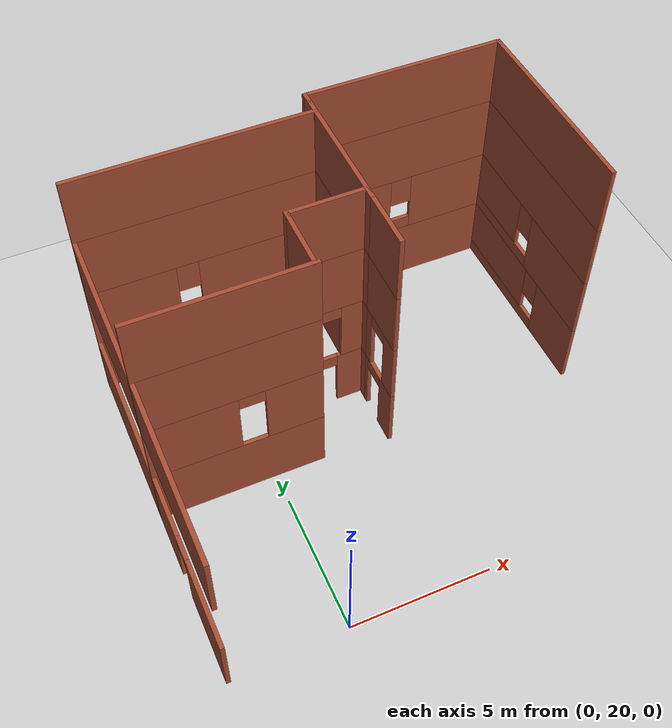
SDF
<sdf version="1.7">
 <world name="default">
  <model name="ground_plane">
   <static>1</static>
   <link name="link">
    <collision name="collision">
     <geometry><plane><normal>0 0 1</normal><size>300 300</size></plane></geometry>
     <surface>
      <contact><collide_bitmask>65535</collide_bitmask></contact>
      <friction><ode><mu>100</mu><mu2>50</mu2></ode></friction>
     </surface>
    </collision>
    <visual name="visual">
     <cast_shadows>0</cast_shadows>
     <geometry><plane><normal>0 0 1</normal><size>300 300</size></plane></geometry>
     <material>
      <script><uri>file://media/materials/scripts/gazebo.material</uri><name>Gazebo/Grey</name></script>
     </material>
    </visual>
   </link>
  </model>
  <model name="Drone_House_1">
   <pose>3.61083 24.7733 0 0 -0 0</pose>
   <link name="Wall_10">
    <collision name="Wall_10_Collision">
     <geometry><box><size>1 0.15 2.5</size></box></geometry>
     <pose>0 0 1.25 0 -0 0</pose>
    </collision>
    <visual name="Wall_10_Visual">
     <pose>0 0 1.25 0 -0 0</pose>
     <geometry><box><size>1 0.15 2.5</size></box></geometry>
     <material>
      <script><uri>file://media/materials/scripts/gazebo.material</uri><name>Gazebo/Bricks</name></script>
      <ambient>1 1 1 1</ambient>
     </material>
     <meta><layer>0</layer></meta>
    </visual>
    <pose>0.626064 7.925 0 0 -0 1.5708</pose>
   </link>
   <link name="Wall_108">
    <collision name="Wall_108_Collision">
     <geometry><box><size>6 0.15 2.5</size></box></geometry>
     <pose>0 0 1.25 0 -0 0</pose>
    </collision>
    <visual name="Wall_108_Visual">
     <pose>0 0 1.25 0 -0 0</pose>
     <geometry><box><size>6 0.15 2.5</size></box></geometry>
     <material>
      <script><uri>file://media/materials/scripts/gazebo.material</uri><name>Gazebo/Bricks</name></script>
      <ambient>1 1 1 1</ambient>
     </material>
     <meta><layer>3</layer></meta>
    </visual>
    <pose>-4.80107 1.443 7.5 0 -0 0</pose>
   </link>
   <link name="Wall_109">
    <collision name="Wall_109_Collision">
     <geometry><box><size>8.5 0.15 2.5</size></box></geometry>
     <pose>0 0 1.25 0 -0 0</pose>
    </collision>
    <visual name="Wall_109_Visual">
     <pose>0 0 1.25 0 -0 0</pose>
     <geometry><box><size>8.5 0.15 2.5</size></box></geometry>
     <material>
      <script><uri>file://media/materials/scripts/gazebo.material</uri><name>Gazebo/Bricks</name></script>
      <ambient>1 1 1 1</ambient>
     </material>
     <meta><layer>3</layer></meta>
    </visual>
    <pose>-3.54894 7.5 7.5 0 -0 0</pose>
   </link>
   <link name="Wall_11">
    <collision name="Wall_11_Collision">
     <geometry><box><size>5.25 0.15 2.5</size></box></geometry>
     <pose>0 0 1.25 0 -0 0</pose>
    </collision>
    <visual name="Wall_11_Visual">
     <pose>0 0 1.25 0 -0 0</pose>
     <geometry><box><size>5.25 0.15 2.5</size></box></geometry>
     <material>
      <script><uri>file://media/materials/scripts/gazebo.material</uri><name>Gazebo/Bricks</name></script>
      <ambient>1 1 1 1</ambient>
     </material>
     <meta><layer>0</layer></meta>
    </visual>
    <pose>0.626064 5.8 0 0 -0 -1.5708</pose>
   </link>
   <link name="Wall_110">
    <collision name="Wall_110_Collision">
     <geometry><box><size>1 0.15 2.5</size></box></geometry>
     <pose>0 0 1.25 0 -0 0</pose>
    </collision>
    <visual name="Wall_110_Visual">
     <pose>0 0 1.25 0 -0 0</pose>
     <geometry><box><size>1 0.15 2.5</size></box></geometry>
     <material>
      <script><uri>file://media/materials/scripts/gazebo.material</uri><name>Gazebo/Bricks</name></script>
      <ambient>1 1 1 1</ambient>
     </material>
     <meta><layer>3</layer></meta>
    </visual>
    <pose>0.626064 7.925 7.5 0 -0 1.5708</pose>
   </link>
   <link name="Wall_111">
    <collision name="Wall_111_Collision">
     <geometry><box><size>5.25 0.15 2.5</size></box></geometry>
     <pose>0 0 1.25 0 -0 0</pose>
    </collision>
    <visual name="Wall_111_Visual">
     <pose>0 0 1.25 0 -0 0</pose>
     <geometry><box><size>5.25 0.15 2.5</size></box></geometry>
     <material>
      <script><uri>file://media/materials/scripts/gazebo.material</uri><name>Gazebo/Bricks</name></script>
      <ambient>1 1 1 1</ambient>
     </material>
     <meta><layer>3</layer></meta>
    </visual>
    <pose>0.626064 5.8 7.5 0 -0 -1.5708</pose>
   </link>
   <link name="Wall_112">
    <collision name="Wall_112_Collision">
     <geometry><box><size>0.5 0.15 2.5</size></box></geometry>
     <pose>0 0 1.25 0 -0 0</pose>
    </collision>
    <visual name="Wall_112_Visual">
     <pose>0 0 1.25 0 -0 0</pose>
     <geometry><box><size>0.5 0.15 2.5</size></box></geometry>
     <material>
      <script><uri>file://media/materials/scripts/gazebo.material</uri><name>Gazebo/Bricks</name></script>
      <ambient>1 1 1 1</ambient>
     </material>
     <meta><layer>3</layer></meta>
    </visual>
    <pose>0.626064 3.425 7.5 0 -0 1.5708</pose>
   </link>
   <link name="Wall_113">
    <collision name="Wall_113_Collision">
     <geometry><box><size>2.75 0.15 2.5</size></box></geometry>
     <pose>0 0 1.25 0 -0 0</pose>
    </collision>
    <visual name="Wall_113_Visual">
     <pose>0 0 1.25 0 -0 0</pose>
     <geometry><box><size>2.75 0.15 2.5</size></box></geometry>
     <material>
      <script><uri>file://media/materials/scripts/gazebo.material</uri><name>Gazebo/Bricks</name></script>
      <ambient>1 1 1 1</ambient>
     </material>
     <meta><layer>3</layer></meta>
    </visual>
    <pose>-0.673936 3.6 7.5 0 -0 3.14159</pose>
   </link>
   <link name="Wall_114">
    <collision name="Wall_114_Collision">
     <geometry><box><size>0.25 0.15 2.5</size></box></geometry>
     <pose>0 0 1.25 0 -0 0</pose>
    </collision>
    <visual name="Wall_114_Visual">
     <pose>0 0 1.25 0 -0 0</pose>
     <geometry><box><size>0.25 0.15 2.5</size></box></geometry>
     <material>
      <script><uri>file://media/materials/scripts/gazebo.material</uri><name>Gazebo/Bricks</name></script>
      <ambient>1 1 1 1</ambient>
     </material>
     <meta><layer>3</layer></meta>
    </visual>
    <pose>-1.97394 3.55 7.5 0 -0 -1.5708</pose>
   </link>
   <link name="Wall_115">
    <collision name="Wall_115_Collision">
     <geometry><box><size>2.25 0.15 2.5</size></box></geometry>
     <pose>0 0 1.25 0 -0 0</pose>
    </collision>
    <visual name="Wall_115_Visual">
     <pose>0 0 1.25 0 -0 0</pose>
     <geometry><box><size>2.25 0.15 2.5</size></box></geometry>
     <material>
      <script><uri>file://media/materials/scripts/gazebo.material</uri><name>Gazebo/Bricks</name></script>
      <ambient>1 1 1 1</ambient>
     </material>
     <meta><layer>3</layer></meta>
    </visual>
    <pose>-1.97394 2.55 7.5 0 -0 -1.5708</pose>
   </link>
   <link name="Wall_116">
    <collision name="Wall_116_Collision">
     <geometry><box><size>2.5 0.15 2.5</size></box></geometry>
     <pose>0 0 1.25 0 -0 0</pose>
    </collision>
    <visual name="Wall_116_Visual">
     <pose>0 0 1.25 0 -0 0</pose>
     <geometry><box><size>2.5 0.15 2.5</size></box></geometry>
     <material>
      <script><uri>file://media/materials/scripts/gazebo.material</uri><name>Gazebo/Bricks</name></script>
      <ambient>1 1 1 1</ambient>
     </material>
     <meta><layer>3</layer></meta>
    </visual>
    <pose>0.626064 2.425 7.5 0 -0 -1.5708</pose>
   </link>
   <link name="Wall_118">
    <collision name="Wall_118_Collision">
     <geometry><box><size>7.25 0.15 2.5</size></box></geometry>
     <pose>0 0 1.25 0 -0 0</pose>
    </collision>
    <visual name="Wall_118_Visual">
     <pose>0 0 1.25 0 -0 0</pose>
     <geometry><box><size>7.25 0.15 2.5</size></box></geometry>
     <material>
      <script><uri>file://media/materials/scripts/gazebo.material</uri><name>Gazebo/Bricks</name></script>
      <ambient>1 1 1 1</ambient>
     </material>
     <meta><layer>3</layer></meta>
    </visual>
    <pose>7.72606 4.8 7.5 0 -0 1.5708</pose>
   </link>
   <link name="Wall_119">
    <collision name="Wall_119_Collision">
     <geometry><box><size>7.25 0.15 2.5</size></box></geometry>
     <pose>0 0 1.25 0 -0 0</pose>
    </collision>
    <visual name="Wall_119_Visual">
     <pose>0 0 1.25 0 -0 0</pose>
     <geometry><box><size>7.25 0.15 2.5</size></box></geometry>
     <material>
      <script><uri>file://media/materials/scripts/gazebo.material</uri><name>Gazebo/Bricks</name></script>
      <ambient>1 1 1 1</ambient>
     </material>
     <meta><layer>3</layer></meta>
    </visual>
    <pose>4.17606 8.35 7.5 0 -0 3.14159</pose>
   </link>
   <link name="Wall_12">
    <collision name="Wall_12_Collision">
     <geometry><box><size>0.5 0.15 2.5</size></box></geometry>
     <pose>0 0 1.25 0 -0 0</pose>
    </collision>
    <visual name="Wall_12_Visual">
     <pose>0 0 1.25 0 -0 0</pose>
     <geometry><box><size>0.5 0.15 2.5</size></box></geometry>
     <material>
      <script><uri>file://media/materials/scripts/gazebo.material</uri><name>Gazebo/Bricks</name></script>
      <ambient>1 1 1 1</ambient>
     </material>
     <meta><layer>0</layer></meta>
    </visual>
    <pose>0.626064 3.425 0 0 -0 1.5708</pose>
   </link>
   <link name="Wall_13">
    <pose>-0.673936 3.6 0 0 -0 3.14159</pose>
    <visual name="Wall_13_Visual_0">
     <pose>-0.843864 0 1.25 0 -0 0</pose>
     <geometry><box><size>1.06227 0.15 2.5</size></box></geometry>
     <material>
      <script><uri>file://media/materials/scripts/gazebo.material</uri><name>Gazebo/Bricks</name></script>
      <ambient>1 1 1 1</ambient>
     </material>
     <meta><layer>0</layer></meta>
    </visual>
    <collision name="Wall_13_Collision_0">
     <geometry><box><size>1.06227 0.15 2.5</size></box></geometry>
     <pose>-0.843864 0 1.25 0 -0 0</pose>
    </collision>
    <visual name="Wall_13_Visual_1">
     <pose>0.981136 0 1.25 0 -0 0</pose>
     <geometry><box><size>0.787728 0.15 2.5</size></box></geometry>
     <material>
      <script><uri>file://media/materials/scripts/gazebo.material</uri><name>Gazebo/Bricks</name></script>
      <ambient>1 1 1 1</ambient>
     </material>
     <meta><layer>0</layer></meta>
    </visual>
    <collision name="Wall_13_Collision_1">
     <geometry><box><size>0.787728 0.15 2.5</size></box></geometry>
     <pose>0.981136 0 1.25 0 -0 0</pose>
    </collision>
    <visual name="Wall_13_Visual_2">
     <pose>0.137272 0 2.25 0 -0 0</pose>
     <geometry><box><size>0.9 0.15 0.5</size></box></geometry>
     <material>
      <script><uri>file://media/materials/scripts/gazebo.material</uri><name>Gazebo/Bricks</name></script>
      <ambient>1 1 1 1</ambient>
     </material>
     <meta><layer>0</layer></meta>
    </visual>
    <collision name="Wall_13_Collision_2">
     <geometry><box><size>0.9 0.15 0.5</size></box></geometry>
     <pose>0.137272 0 2.25 0 -0 0</pose>
    </collision>
   </link>
   <link name="Wall_14">
    <collision name="Wall_14_Collision">
     <geometry><box><size>0.25 0.15 2.5</size></box></geometry>
     <pose>0 0 1.25 0 -0 0</pose>
    </collision>
    <visual name="Wall_14_Visual">
     <pose>0 0 1.25 0 -0 0</pose>
     <geometry><box><size>0.25 0.15 2.5</size></box></geometry>
     <material>
      <script><uri>file://media/materials/scripts/gazebo.material</uri><name>Gazebo/Bricks</name></script>
      <ambient>1 1 1 1</ambient>
     </material>
     <meta><layer>0</layer></meta>
    </visual>
    <pose>-1.97394 3.55 0 0 -0 -1.5708</pose>
   </link>
   <link name="Wall_16">
    <pose>-1.97394 2.55 0 0 -0 -1.5708</pose>
    <visual name="Wall_16_Visual_0">
     <pose>-0.800315 0 1.25 0 -0 0</pose>
     <geometry><box><size>0.649369 0.15 2.5</size></box></geometry>
     <material>
      <script><uri>file://media/materials/scripts/gazebo.material</uri><name>Gazebo/Bricks</name></script>
      <ambient>1 1 1 1</ambient>
     </material>
     <meta><layer>0</layer></meta>
    </visual>
    <collision name="Wall_16_Collision_0">
     <geometry><box><size>0.649369 0.15 2.5</size></box></geometry>
     <pose>-0.800315 0 1.25 0 -0 0</pose>
    </collision>
    <visual name="Wall_16_Visual_1">
     <pose>0.774685 0 1.25 0 -0 0</pose>
     <geometry><box><size>0.700631 0.15 2.5</size></box></geometry>
     <material>
      <script><uri>file://media/materials/scripts/gazebo.material</uri><name>Gazebo/Bricks</name></script>
      <ambient>1 1 1 1</ambient>
     </material>
     <meta><layer>0</layer></meta>
    </visual>
    <collision name="Wall_16_Collision_1">
     <geometry><box><size>0.700631 0.15 2.5</size></box></geometry>
     <pose>0.774685 0 1.25 0 -0 0</pose>
    </collision>
    <visual name="Wall_16_Visual_2">
     <pose>-0.025631 0 2.25 0 -0 0</pose>
     <geometry><box><size>0.9 0.15 0.5</size></box></geometry>
     <material>
      <script><uri>file://media/materials/scripts/gazebo.material</uri><name>Gazebo/Bricks</name></script>
      <ambient>1 1 1 1</ambient>
     </material>
     <meta><layer>0</layer></meta>
    </visual>
    <collision name="Wall_16_Collision_2">
     <geometry><box><size>0.9 0.15 0.5</size></box></geometry>
     <pose>-0.025631 0 2.25 0 -0 0</pose>
    </collision>
   </link>
   <link name="Wall_18">
    <pose>0.626064 2.425 0 0 -0 -1.5708</pose>
    <visual name="Wall_18_Visual_0">
     <pose>-0.898715 0 1.25 0 -0 0</pose>
     <geometry><box><size>0.70257 0.15 2.5</size></box></geometry>
     <material>
      <script><uri>file://media/materials/scripts/gazebo.material</uri><name>Gazebo/Bricks</name></script>
      <ambient>1 1 1 1</ambient>
     </material>
     <meta><layer>0</layer></meta>
    </visual>
    <collision name="Wall_18_Collision_0">
     <geometry><box><size>0.70257 0.15 2.5</size></box></geometry>
     <pose>-0.898715 0 1.25 0 -0 0</pose>
    </collision>
    <visual name="Wall_18_Visual_1">
     <pose>0.801285 0 1.25 0 -0 0</pose>
     <geometry><box><size>0.89743 0.15 2.5</size></box></geometry>
     <material>
      <script><uri>file://media/materials/scripts/gazebo.material</uri><name>Gazebo/Bricks</name></script>
      <ambient>1 1 1 1</ambient>
     </material>
     <meta><layer>0</layer></meta>
    </visual>
    <collision name="Wall_18_Collision_1">
     <geometry><box><size>0.89743 0.15 2.5</size></box></geometry>
     <pose>0.801285 0 1.25 0 -0 0</pose>
    </collision>
    <visual name="Wall_18_Visual_2">
     <pose>-0.09743 0 2.25 0 -0 0</pose>
     <geometry><box><size>0.9 0.15 0.5</size></box></geometry>
     <material>
      <script><uri>file://media/materials/scripts/gazebo.material</uri><name>Gazebo/Bricks</name></script>
      <ambient>1 1 1 1</ambient>
     </material>
     <meta><layer>0</layer></meta>
    </visual>
    <collision name="Wall_18_Collision_2">
     <geometry><box><size>0.9 0.15 0.5</size></box></geometry>
     <pose>-0.09743 0 2.25 0 -0 0</pose>
    </collision>
   </link>
   <link name="Wall_20">
    <pose>7.72606 4.8 0 0 -0 1.5708</pose>
    <visual name="Wall_20_Visual_0">
     <pose>-2.40648 0 1.25 0 -0 0</pose>
     <geometry><box><size>2.43704 0.15 2.5</size></box></geometry>
     <material>
      <script><uri>file://media/materials/scripts/gazebo.material</uri><name>Gazebo/Bricks</name></script>
      <ambient>1 1 1 1</ambient>
     </material>
     <meta><layer>0</layer></meta>
    </visual>
    <collision name="Wall_20_Collision_0">
     <geometry><box><size>2.43704 0.15 2.5</size></box></geometry>
     <pose>-2.40648 0 1.25 0 -0 0</pose>
    </collision>
    <visual name="Wall_20_Visual_1">
     <pose>1.21852 0 0.25 0 -0 0</pose>
     <geometry><box><size>4.81296 0.15 0.5</size></box></geometry>
     <material>
      <script><uri>file://media/materials/scripts/gazebo.material</uri><name>Gazebo/Bricks</name></script>
      <ambient>1 1 1 1</ambient>
     </material>
     <meta><layer>0</layer></meta>
    </visual>
    <collision name="Wall_20_Collision_1">
     <geometry><box><size>4.81296 0.15 0.5</size></box></geometry>
     <pose>1.21852 0 0.25 0 -0 0</pose>
    </collision>
    <visual name="Wall_20_Visual_2">
     <pose>1.61852 0 1.5 0 -0 0</pose>
     <geometry><box><size>4.01296 0.15 2</size></box></geometry>
     <material>
      <script><uri>file://media/materials/scripts/gazebo.material</uri><name>Gazebo/Bricks</name></script>
      <ambient>1 1 1 1</ambient>
     </material>
     <meta><layer>0</layer></meta>
    </visual>
    <collision name="Wall_20_Collision_2">
     <geometry><box><size>4.01296 0.15 2</size></box></geometry>
     <pose>1.61852 0 1.5 0 -0 0</pose>
    </collision>
    <visual name="Wall_20_Visual_3">
     <pose>-0.787959 0 1.9 0 -0 0</pose>
     <geometry><box><size>0.8 0.15 1.2</size></box></geometry>
     <material>
      <script><uri>file://media/materials/scripts/gazebo.material</uri><name>Gazebo/Bricks</name></script>
      <ambient>1 1 1 1</ambient>
     </material>
     <meta><layer>0</layer></meta>
    </visual>
    <collision name="Wall_20_Collision_3">
     <geometry><box><size>0.8 0.15 1.2</size></box></geometry>
     <pose>-0.787959 0 1.9 0 -0 0</pose>
    </collision>
   </link>
   <link name="Wall_21">
    <collision name="Wall_21_Collision">
     <geometry><box><size>7.25 0.15 2.5</size></box></geometry>
     <pose>0 0 1.25 0 -0 0</pose>
    </collision>
    <visual name="Wall_21_Visual">
     <pose>0 0 1.25 0 -0 0</pose>
     <geometry><box><size>7.25 0.15 2.5</size></box></geometry>
     <material>
      <script><uri>file://media/materials/scripts/gazebo.material</uri><name>Gazebo/Bricks</name></script>
      <ambient>1 1 1 1</ambient>
     </material>
     <meta><layer>0</layer></meta>
    </visual>
    <pose>4.17606 8.35 0 0 -0 3.14159</pose>
   </link>
   <link name="Wall_37">
    <pose>-4.80107 1.443 2.5 0 -0 0</pose>
    <visual name="Wall_37_Visual_0">
     <pose>-1.43248 0 1.25 0 -0 0</pose>
     <geometry><box><size>3.13503 0.15 2.5</size></box></geometry>
     <material>
      <script><uri>file://media/materials/scripts/gazebo.material</uri><name>Gazebo/Bricks</name></script>
      <ambient>1 1 1 1</ambient>
     </material>
     <meta><layer>1</layer></meta>
    </visual>
    <collision name="Wall_37_Collision_0">
     <geometry><box><size>3.13503 0.15 2.5</size></box></geometry>
     <pose>-1.43248 0 1.25 0 -0 0</pose>
    </collision>
    <visual name="Wall_37_Visual_1">
     <pose>2.01752 0 1.25 0 -0 0</pose>
     <geometry><box><size>1.96497 0.15 2.5</size></box></geometry>
     <material>
      <script><uri>file://media/materials/scripts/gazebo.material</uri><name>Gazebo/Bricks</name></script>
      <ambient>1 1 1 1</ambient>
     </material>
     <meta><layer>1</layer></meta>
    </visual>
    <collision name="Wall_37_Collision_1">
     <geometry><box><size>1.96497 0.15 2.5</size></box></geometry>
     <pose>2.01752 0 1.25 0 -0 0</pose>
    </collision>
    <visual name="Wall_37_Visual_2">
     <pose>0.585032 0 2.25 0 -0 0</pose>
     <geometry><box><size>0.9 0.15 0.5</size></box></geometry>
     <material>
      <script><uri>file://media/materials/scripts/gazebo.material</uri><name>Gazebo/Bricks</name></script>
      <ambient>1 1 1 1</ambient>
     </material>
     <meta><layer>1</layer></meta>
    </visual>
    <collision name="Wall_37_Collision_2">
     <geometry><box><size>0.9 0.15 0.5</size></box></geometry>
     <pose>0.585032 0 2.25 0 -0 0</pose>
    </collision>
   </link>
   <link name="Wall_38">
    <pose>-3.54894 7.5 2.5 0 -0 0</pose>
    <visual name="Wall_38_Visual_0">
     <pose>-2.67185 0 1.25 0 -0 0</pose>
     <geometry><box><size>3.1563 0.15 2.5</size></box></geometry>
     <material>
      <script><uri>file://media/materials/scripts/gazebo.material</uri><name>Gazebo/Bricks</name></script>
      <ambient>1 1 1 1</ambient>
     </material>
     <meta><layer>1</layer></meta>
    </visual>
    <collision name="Wall_38_Collision_0">
     <geometry><box><size>3.1563 0.15 2.5</size></box></geometry>
     <pose>-2.67185 0 1.25 0 -0 0</pose>
    </collision>
    <visual name="Wall_38_Visual_1">
     <pose>1.57815 0 0.25 0 -0 0</pose>
     <geometry><box><size>5.3437 0.15 0.5</size></box></geometry>
     <material>
      <script><uri>file://media/materials/scripts/gazebo.material</uri><name>Gazebo/Bricks</name></script>
      <ambient>1 1 1 1</ambient>
     </material>
     <meta><layer>1</layer></meta>
    </visual>
    <collision name="Wall_38_Collision_1">
     <geometry><box><size>5.3437 0.15 0.5</size></box></geometry>
     <pose>1.57815 0 0.25 0 -0 0</pose>
    </collision>
    <visual name="Wall_38_Visual_2">
     <pose>1.97815 0 1.5 0 -0 0</pose>
     <geometry><box><size>4.5437 0.15 2</size></box></geometry>
     <material>
      <script><uri>file://media/materials/scripts/gazebo.material</uri><name>Gazebo/Bricks</name></script>
      <ambient>1 1 1 1</ambient>
     </material>
     <meta><layer>1</layer></meta>
    </visual>
    <collision name="Wall_38_Collision_2">
     <geometry><box><size>4.5437 0.15 2</size></box></geometry>
     <pose>1.97815 0 1.5 0 -0 0</pose>
    </collision>
    <visual name="Wall_38_Visual_3">
     <pose>-0.693697 0 1.9 0 -0 0</pose>
     <geometry><box><size>0.8 0.15 1.2</size></box></geometry>
     <material>
      <script><uri>file://media/materials/scripts/gazebo.material</uri><name>Gazebo/Bricks</name></script>
      <ambient>1 1 1 1</ambient>
     </material>
     <meta><layer>1</layer></meta>
    </visual>
    <collision name="Wall_38_Collision_3">
     <geometry><box><size>0.8 0.15 1.2</size></box></geometry>
     <pose>-0.693697 0 1.9 0 -0 0</pose>
    </collision>
   </link>
   <link name="Wall_39">
    <collision name="Wall_39_Collision">
     <geometry><box><size>1 0.15 2.5</size></box></geometry>
     <pose>0 0 1.25 0 -0 0</pose>
    </collision>
    <visual name="Wall_39_Visual">
     <pose>0 0 1.25 0 -0 0</pose>
     <geometry><box><size>1 0.15 2.5</size></box></geometry>
     <material>
      <script><uri>file://media/materials/scripts/gazebo.material</uri><name>Gazebo/Bricks</name></script>
      <ambient>1 1 1 1</ambient>
     </material>
     <meta><layer>1</layer></meta>
    </visual>
    <pose>0.626064 7.925 2.5 0 -0 1.5708</pose>
   </link>
   <link name="Wall_4">
    <pose>-7.72394 1.325 0 0 -0 -1.5708</pose>
    <visual name="Wall_4_Visual_0">
     <pose>-2.0069 0 1.25 0 -0 0</pose>
     <geometry><box><size>8.4862 0.15 2.5</size></box></geometry>
     <material>
      <script><uri>file://media/materials/scripts/gazebo.material</uri><name>Gazebo/Bricks</name></script>
      <ambient>1 1 1 1</ambient>
     </material>
     <meta><layer>0</layer></meta>
    </visual>
    <collision name="Wall_4_Collision_0">
     <geometry><box><size>8.4862 0.15 2.5</size></box></geometry>
     <pose>-2.0069 0 1.25 0 -0 0</pose>
    </collision>
    <visual name="Wall_4_Visual_1">
     <pose>4.6931 0 1.25 0 -0 0</pose>
     <geometry><box><size>3.1138 0.15 2.5</size></box></geometry>
     <material>
      <script><uri>file://media/materials/scripts/gazebo.material</uri><name>Gazebo/Bricks</name></script>
      <ambient>1 1 1 1</ambient>
     </material>
     <meta><layer>0</layer></meta>
    </visual>
    <collision name="Wall_4_Collision_1">
     <geometry><box><size>3.1138 0.15 2.5</size></box></geometry>
     <pose>4.6931 0 1.25 0 -0 0</pose>
    </collision>
    <visual name="Wall_4_Visual_2">
     <pose>2.6862 0 2.25 0 -0 0</pose>
     <geometry><box><size>0.9 0.15 0.5</size></box></geometry>
     <material>
      <script><uri>file://media/materials/scripts/gazebo.material</uri><name>Gazebo/Bricks</name></script>
      <ambient>1 1 1 1</ambient>
     </material>
     <meta><layer>0</layer></meta>
    </visual>
    <collision name="Wall_4_Collision_2">
     <geometry><box><size>0.9 0.15 0.5</size></box></geometry>
     <pose>2.6862 0 2.25 0 -0 0</pose>
    </collision>
   </link>
   <link name="Wall_40">
    <collision name="Wall_40_Collision">
     <geometry><box><size>5.25 0.15 2.5</size></box></geometry>
     <pose>0 0 1.25 0 -0 0</pose>
    </collision>
    <visual name="Wall_40_Visual">
     <pose>0 0 1.25 0 -0 0</pose>
     <geometry><box><size>5.25 0.15 2.5</size></box></geometry>
     <material>
      <script><uri>file://media/materials/scripts/gazebo.material</uri><name>Gazebo/Bricks</name></script>
      <ambient>1 1 1 1</ambient>
     </material>
     <meta><layer>1</layer></meta>
    </visual>
    <pose>0.626064 5.8 2.5 0 -0 -1.5708</pose>
   </link>
   <link name="Wall_41">
    <collision name="Wall_41_Collision">
     <geometry><box><size>0.5 0.15 2.5</size></box></geometry>
     <pose>0 0 1.25 0 -0 0</pose>
    </collision>
    <visual name="Wall_41_Visual">
     <pose>0 0 1.25 0 -0 0</pose>
     <geometry><box><size>0.5 0.15 2.5</size></box></geometry>
     <material>
      <script><uri>file://media/materials/scripts/gazebo.material</uri><name>Gazebo/Bricks</name></script>
      <ambient>1 1 1 1</ambient>
     </material>
     <meta><layer>1</layer></meta>
    </visual>
    <pose>0.626064 3.425 2.5 0 -0 1.5708</pose>
   </link>
   <link name="Wall_42">
    <pose>-0.673936 3.6 2.5 0 -0 3.14159</pose>
    <visual name="Wall_42_Visual_0">
     <pose>-0.910365 0 1.25 0 -0 0</pose>
     <geometry><box><size>0.929271 0.15 2.5</size></box></geometry>
     <material>
      <script><uri>file://media/materials/scripts/gazebo.material</uri><name>Gazebo/Bricks</name></script>
      <ambient>1 1 1 1</ambient>
     </material>
     <meta><layer>1</layer></meta>
    </visual>
    <collision name="Wall_42_Collision_0">
     <geometry><box><size>0.929271 0.15 2.5</size></box></geometry>
     <pose>-0.910365 0 1.25 0 -0 0</pose>
    </collision>
    <visual name="Wall_42_Visual_1">
     <pose>0.914635 0 1.25 0 -0 0</pose>
     <geometry><box><size>0.920729 0.15 2.5</size></box></geometry>
     <material>
      <script><uri>file://media/materials/scripts/gazebo.material</uri><name>Gazebo/Bricks</name></script>
      <ambient>1 1 1 1</ambient>
     </material>
     <meta><layer>1</layer></meta>
    </visual>
    <collision name="Wall_42_Collision_1">
     <geometry><box><size>0.920729 0.15 2.5</size></box></geometry>
     <pose>0.914635 0 1.25 0 -0 0</pose>
    </collision>
    <visual name="Wall_42_Visual_2">
     <pose>0.004271 0 2.25 0 -0 0</pose>
     <geometry><box><size>0.9 0.15 0.5</size></box></geometry>
     <material>
      <script><uri>file://media/materials/scripts/gazebo.material</uri><name>Gazebo/Bricks</name></script>
      <ambient>1 1 1 1</ambient>
     </material>
     <meta><layer>1</layer></meta>
    </visual>
    <collision name="Wall_42_Collision_2">
     <geometry><box><size>0.9 0.15 0.5</size></box></geometry>
     <pose>0.004271 0 2.25 0 -0 0</pose>
    </collision>
   </link>
   <link name="Wall_43">
    <collision name="Wall_43_Collision">
     <geometry><box><size>0.25 0.15 2.5</size></box></geometry>
     <pose>0 0 1.25 0 -0 0</pose>
    </collision>
    <visual name="Wall_43_Visual">
     <pose>0 0 1.25 0 -0 0</pose>
     <geometry><box><size>0.25 0.15 2.5</size></box></geometry>
     <material>
      <script><uri>file://media/materials/scripts/gazebo.material</uri><name>Gazebo/Bricks</name></script>
      <ambient>1 1 1 1</ambient>
     </material>
     <meta><layer>1</layer></meta>
    </visual>
    <pose>-1.97394 3.55 2.5 0 -0 -1.5708</pose>
   </link>
   <link name="Wall_44">
    <pose>-1.97394 2.55 2.5 0 -0 -1.5708</pose>
    <visual name="Wall_44_Visual_0">
     <pose>-0.773715 0 1.25 0 -0 0</pose>
     <geometry><box><size>0.70257 0.15 2.5</size></box></geometry>
     <material>
      <script><uri>file://media/materials/scripts/gazebo.material</uri><name>Gazebo/Bricks</name></script>
      <ambient>1 1 1 1</ambient>
     </material>
     <meta><layer>1</layer></meta>
    </visual>
    <collision name="Wall_44_Collision_0">
     <geometry><box><size>0.70257 0.15 2.5</size></box></geometry>
     <pose>-0.773715 0 1.25 0 -0 0</pose>
    </collision>
    <visual name="Wall_44_Visual_1">
     <pose>0.801285 0 1.25 0 -0 0</pose>
     <geometry><box><size>0.64743 0.15 2.5</size></box></geometry>
     <material>
      <script><uri>file://media/materials/scripts/gazebo.material</uri><name>Gazebo/Bricks</name></script>
      <ambient>1 1 1 1</ambient>
     </material>
     <meta><layer>1</layer></meta>
    </visual>
    <collision name="Wall_44_Collision_1">
     <geometry><box><size>0.64743 0.15 2.5</size></box></geometry>
     <pose>0.801285 0 1.25 0 -0 0</pose>
    </collision>
    <visual name="Wall_44_Visual_2">
     <pose>0.02757 0 2.25 0 -0 0</pose>
     <geometry><box><size>0.9 0.15 0.5</size></box></geometry>
     <material>
      <script><uri>file://media/materials/scripts/gazebo.material</uri><name>Gazebo/Bricks</name></script>
      <ambient>1 1 1 1</ambient>
     </material>
     <meta><layer>1</layer></meta>
    </visual>
    <collision name="Wall_44_Collision_2">
     <geometry><box><size>0.9 0.15 0.5</size></box></geometry>
     <pose>0.02757 0 2.25 0 -0 0</pose>
    </collision>
   </link>
   <link name="Wall_45">
    <pose>0.626064 2.425 2.5 0 -0 -1.5708</pose>
    <visual name="Wall_45_Visual_0">
     <pose>-0.818915 0 1.25 0 -0 0</pose>
     <geometry><box><size>0.862171 0.15 2.5</size></box></geometry>
     <material>
      <script><uri>file://media/materials/scripts/gazebo.material</uri><name>Gazebo/Bricks</name></script>
      <ambient>1 1 1 1</ambient>
     </material>
     <meta><layer>1</layer></meta>
    </visual>
    <collision name="Wall_45_Collision_0">
     <geometry><box><size>0.862171 0.15 2.5</size></box></geometry>
     <pose>-0.818915 0 1.25 0 -0 0</pose>
    </collision>
    <visual name="Wall_45_Visual_1">
     <pose>0.881085 0 1.25 0 -0 0</pose>
     <geometry><box><size>0.737829 0.15 2.5</size></box></geometry>
     <material>
      <script><uri>file://media/materials/scripts/gazebo.material</uri><name>Gazebo/Bricks</name></script>
      <ambient>1 1 1 1</ambient>
     </material>
     <meta><layer>1</layer></meta>
    </visual>
    <collision name="Wall_45_Collision_1">
     <geometry><box><size>0.737829 0.15 2.5</size></box></geometry>
     <pose>0.881085 0 1.25 0 -0 0</pose>
    </collision>
    <visual name="Wall_45_Visual_2">
     <pose>0.062171 0 2.25 0 -0 0</pose>
     <geometry><box><size>0.9 0.15 0.5</size></box></geometry>
     <material>
      <script><uri>file://media/materials/scripts/gazebo.material</uri><name>Gazebo/Bricks</name></script>
      <ambient>1 1 1 1</ambient>
     </material>
     <meta><layer>1</layer></meta>
    </visual>
    <collision name="Wall_45_Collision_2">
     <geometry><box><size>0.9 0.15 0.5</size></box></geometry>
     <pose>0.062171 0 2.25 0 -0 0</pose>
    </collision>
   </link>
   <link name="Wall_47">
    <pose>7.72606 4.8 2.5 0 -0 1.5708</pose>
    <visual name="Wall_47_Visual_0">
     <pose>-1.90108 0 1.25 0 -0 0</pose>
     <geometry><box><size>3.44785 0.15 2.5</size></box></geometry>
     <material>
      <script><uri>file://media/materials/scripts/gazebo.material</uri><name>Gazebo/Bricks</name></script>
      <ambient>1 1 1 1</ambient>
     </material>
     <meta><layer>1</layer></meta>
    </visual>
    <collision name="Wall_47_Collision_0">
     <geometry><box><size>3.44785 0.15 2.5</size></box></geometry>
     <pose>-1.90108 0 1.25 0 -0 0</pose>
    </collision>
    <visual name="Wall_47_Visual_1">
     <pose>1.72392 0 0.25 0 -0 0</pose>
     <geometry><box><size>3.80215 0.15 0.5</size></box></geometry>
     <material>
      <script><uri>file://media/materials/scripts/gazebo.material</uri><name>Gazebo/Bricks</name></script>
      <ambient>1 1 1 1</ambient>
     </material>
     <meta><layer>1</layer></meta>
    </visual>
    <collision name="Wall_47_Collision_1">
     <geometry><box><size>3.80215 0.15 0.5</size></box></geometry>
     <pose>1.72392 0 0.25 0 -0 0</pose>
    </collision>
    <visual name="Wall_47_Visual_2">
     <pose>2.12392 0 1.5 0 -0 0</pose>
     <geometry><box><size>3.00215 0.15 2</size></box></geometry>
     <material>
      <script><uri>file://media/materials/scripts/gazebo.material</uri><name>Gazebo/Bricks</name></script>
      <ambient>1 1 1 1</ambient>
     </material>
     <meta><layer>1</layer></meta>
    </visual>
    <collision name="Wall_47_Collision_2">
     <geometry><box><size>3.00215 0.15 2</size></box></geometry>
     <pose>2.12392 0 1.5 0 -0 0</pose>
    </collision>
    <visual name="Wall_47_Visual_3">
     <pose>0.222849 0 1.9 0 -0 0</pose>
     <geometry><box><size>0.8 0.15 1.2</size></box></geometry>
     <material>
      <script><uri>file://media/materials/scripts/gazebo.material</uri><name>Gazebo/Bricks</name></script>
      <ambient>1 1 1 1</ambient>
     </material>
     <meta><layer>1</layer></meta>
    </visual>
    <collision name="Wall_47_Collision_3">
     <geometry><box><size>0.8 0.15 1.2</size></box></geometry>
     <pose>0.222849 0 1.9 0 -0 0</pose>
    </collision>
   </link>
   <link name="Wall_48">
    <pose>4.17606 8.35 2.5 0 -0 3.14159</pose>
    <visual name="Wall_48_Visual_0">
     <pose>-2.07248 0 1.25 0 -0 0</pose>
     <geometry><box><size>3.10503 0.15 2.5</size></box></geometry>
     <material>
      <script><uri>file://media/materials/scripts/gazebo.material</uri><name>Gazebo/Bricks</name></script>
      <ambient>1 1 1 1</ambient>
     </material>
     <meta><layer>1</layer></meta>
    </visual>
    <collision name="Wall_48_Collision_0">
     <geometry><box><size>3.10503 0.15 2.5</size></box></geometry>
     <pose>-2.07248 0 1.25 0 -0 0</pose>
    </collision>
    <visual name="Wall_48_Visual_1">
     <pose>1.55252 0 0.25 0 -0 0</pose>
     <geometry><box><size>4.14497 0.15 0.5</size></box></geometry>
     <material>
      <script><uri>file://media/materials/scripts/gazebo.material</uri><name>Gazebo/Bricks</name></script>
      <ambient>1 1 1 1</ambient>
     </material>
     <meta><layer>1</layer></meta>
    </visual>
    <collision name="Wall_48_Collision_1">
     <geometry><box><size>4.14497 0.15 0.5</size></box></geometry>
     <pose>1.55252 0 0.25 0 -0 0</pose>
    </collision>
    <visual name="Wall_48_Visual_2">
     <pose>1.95252 0 1.5 0 -0 0</pose>
     <geometry><box><size>3.34497 0.15 2</size></box></geometry>
     <material>
      <script><uri>file://media/materials/scripts/gazebo.material</uri><name>Gazebo/Bricks</name></script>
      <ambient>1 1 1 1</ambient>
     </material>
     <meta><layer>1</layer></meta>
    </visual>
    <collision name="Wall_48_Collision_2">
     <geometry><box><size>3.34497 0.15 2</size></box></geometry>
     <pose>1.95252 0 1.5 0 -0 0</pose>
    </collision>
    <visual name="Wall_48_Visual_3">
     <pose>-0.119967 0 1.9 0 -0 0</pose>
     <geometry><box><size>0.8 0.15 1.2</size></box></geometry>
     <material>
      <script><uri>file://media/materials/scripts/gazebo.material</uri><name>Gazebo/Bricks</name></script>
      <ambient>1 1 1 1</ambient>
     </material>
     <meta><layer>1</layer></meta>
    </visual>
    <collision name="Wall_48_Collision_3">
     <geometry><box><size>0.8 0.15 1.2</size></box></geometry>
     <pose>-0.119967 0 1.9 0 -0 0</pose>
    </collision>
   </link>
   <link name="Wall_7">
    <collision name="Wall_7_Collision">
     <geometry><box><size>6 0.15 2.5</size></box></geometry>
     <pose>0 0 1.25 0 -0 0</pose>
    </collision>
    <visual name="Wall_7_Visual">
     <pose>0 0 1.25 0 -0 0</pose>
     <geometry><box><size>6 0.15 2.5</size></box></geometry>
     <material>
      <script><uri>file://media/materials/scripts/gazebo.material</uri><name>Gazebo/Bricks</name></script>
      <ambient>1 1 1 1</ambient>
     </material>
     <meta><layer>0</layer></meta>
    </visual>
    <pose>-4.80107 1.443 0 0 -0 0</pose>
   </link>
   <link name="Wall_84">
    <collision name="Wall_84_Collision">
     <geometry><box><size>12.5 0.15 2.5</size></box></geometry>
     <pose>0 0 1.25 0 -0 0</pose>
    </collision>
    <visual name="Wall_84_Visual">
     <pose>0 0 1.25 0 -0 0</pose>
     <geometry><box><size>12.5 0.15 2.5</size></box></geometry>
     <material>
      <script><uri>file://media/materials/scripts/gazebo.material</uri><name>Gazebo/Bricks</name></script>
      <ambient>1 1 1 1</ambient>
     </material>
     <meta><layer>2</layer></meta>
    </visual>
    <pose>-7.72394 1.325 5 0 -0 -1.5708</pose>
   </link>
   <link name="Wall_86">
    <collision name="Wall_86_Collision">
     <geometry><box><size>6 0.15 2.5</size></box></geometry>
     <pose>0 0 1.25 0 -0 0</pose>
    </collision>
    <visual name="Wall_86_Visual">
     <pose>0 0 1.25 0 -0 0</pose>
     <geometry><box><size>6 0.15 2.5</size></box></geometry>
     <material>
      <script><uri>file://media/materials/scripts/gazebo.material</uri><name>Gazebo/Bricks</name></script>
      <ambient>1 1 1 1</ambient>
     </material>
     <meta><layer>2</layer></meta>
    </visual>
    <pose>-4.80107 1.443 5 0 -0 0</pose>
   </link>
   <link name="Wall_87">
    <collision name="Wall_87_Collision">
     <geometry><box><size>8.5 0.15 2.5</size></box></geometry>
     <pose>0 0 1.25 0 -0 0</pose>
    </collision>
    <visual name="Wall_87_Visual">
     <pose>0 0 1.25 0 -0 0</pose>
     <geometry><box><size>8.5 0.15 2.5</size></box></geometry>
     <material>
      <script><uri>file://media/materials/scripts/gazebo.material</uri><name>Gazebo/Bricks</name></script>
      <ambient>1 1 1 1</ambient>
     </material>
     <meta><layer>2</layer></meta>
    </visual>
    <pose>-3.54894 7.5 5 0 -0 0</pose>
   </link>
   <link name="Wall_88">
    <collision name="Wall_88_Collision">
     <geometry><box><size>1 0.15 2.5</size></box></geometry>
     <pose>0 0 1.25 0 -0 0</pose>
    </collision>
    <visual name="Wall_88_Visual">
     <pose>0 0 1.25 0 -0 0</pose>
     <geometry><box><size>1 0.15 2.5</size></box></geometry>
     <material>
      <script><uri>file://media/materials/scripts/gazebo.material</uri><name>Gazebo/Bricks</name></script>
      <ambient>1 1 1 1</ambient>
     </material>
     <meta><layer>2</layer></meta>
    </visual>
    <pose>0.626064 7.925 5 0 -0 1.5708</pose>
   </link>
   <link name="Wall_89">
    <collision name="Wall_89_Collision">
     <geometry><box><size>5.25 0.15 2.5</size></box></geometry>
     <pose>0 0 1.25 0 -0 0</pose>
    </collision>
    <visual name="Wall_89_Visual">
     <pose>0 0 1.25 0 -0 0</pose>
     <geometry><box><size>5.25 0.15 2.5</size></box></geometry>
     <material>
      <script><uri>file://media/materials/scripts/gazebo.material</uri><name>Gazebo/Bricks</name></script>
      <ambient>1 1 1 1</ambient>
     </material>
     <meta><layer>2</layer></meta>
    </visual>
    <pose>0.626064 5.8 5 0 -0 -1.5708</pose>
   </link>
   <link name="Wall_9">
    <pose>-3.54894 7.5 0 0 -0 0</pose>
    <visual name="Wall_9_Visual_0">
     <pose>-3.04425 0 1.25 0 -0 0</pose>
     <geometry><box><size>2.4115 0.15 2.5</size></box></geometry>
     <material>
      <script><uri>file://media/materials/scripts/gazebo.material</uri><name>Gazebo/Bricks</name></script>
      <ambient>1 1 1 1</ambient>
     </material>
     <meta><layer>0</layer></meta>
    </visual>
    <collision name="Wall_9_Collision_0">
     <geometry><box><size>2.4115 0.15 2.5</size></box></geometry>
     <pose>-3.04425 0 1.25 0 -0 0</pose>
    </collision>
    <visual name="Wall_9_Visual_1">
     <pose>1.20575 0 0.25 0 -0 0</pose>
     <geometry><box><size>6.0885 0.15 0.5</size></box></geometry>
     <material>
      <script><uri>file://media/materials/scripts/gazebo.material</uri><name>Gazebo/Bricks</name></script>
      <ambient>1 1 1 1</ambient>
     </material>
     <meta><layer>0</layer></meta>
    </visual>
    <collision name="Wall_9_Collision_1">
     <geometry><box><size>6.0885 0.15 0.5</size></box></geometry>
     <pose>1.20575 0 0.25 0 -0 0</pose>
    </collision>
    <visual name="Wall_9_Visual_2">
     <pose>1.60575 0 1.5 0 -0 0</pose>
     <geometry><box><size>5.2885 0.15 2</size></box></geometry>
     <material>
      <script><uri>file://media/materials/scripts/gazebo.material</uri><name>Gazebo/Bricks</name></script>
      <ambient>1 1 1 1</ambient>
     </material>
     <meta><layer>0</layer></meta>
    </visual>
    <collision name="Wall_9_Collision_2">
     <geometry><box><size>5.2885 0.15 2</size></box></geometry>
     <pose>1.60575 0 1.5 0 -0 0</pose>
    </collision>
    <visual name="Wall_9_Visual_3">
     <pose>-1.4385 0 1.9 0 -0 0</pose>
     <geometry><box><size>0.8 0.15 1.2</size></box></geometry>
     <material>
      <script><uri>file://media/materials/scripts/gazebo.material</uri><name>Gazebo/Bricks</name></script>
      <ambient>1 1 1 1</ambient>
     </material>
     <meta><layer>0</layer></meta>
    </visual>
    <collision name="Wall_9_Collision_3">
     <geometry><box><size>0.8 0.15 1.2</size></box></geometry>
     <pose>-1.4385 0 1.9 0 -0 0</pose>
    </collision>
   </link>
   <link name="Wall_90">
    <collision name="Wall_90_Collision">
     <geometry><box><size>0.5 0.15 2.5</size></box></geometry>
     <pose>0 0 1.25 0 -0 0</pose>
    </collision>
    <visual name="Wall_90_Visual">
     <pose>0 0 1.25 0 -0 0</pose>
     <geometry><box><size>0.5 0.15 2.5</size></box></geometry>
     <material>
      <script><uri>file://media/materials/scripts/gazebo.material</uri><name>Gazebo/Bricks</name></script>
      <ambient>1 1 1 1</ambient>
     </material>
     <meta><layer>2</layer></meta>
    </visual>
    <pose>0.626064 3.425 5 0 -0 1.5708</pose>
   </link>
   <link name="Wall_91">
    <collision name="Wall_91_Collision">
     <geometry><box><size>2.75 0.15 2.5</size></box></geometry>
     <pose>0 0 1.25 0 -0 0</pose>
    </collision>
    <visual name="Wall_91_Visual">
     <pose>0 0 1.25 0 -0 0</pose>
     <geometry><box><size>2.75 0.15 2.5</size></box></geometry>
     <material>
      <script><uri>file://media/materials/scripts/gazebo.material</uri><name>Gazebo/Bricks</name></script>
      <ambient>1 1 1 1</ambient>
     </material>
     <meta><layer>2</layer></meta>
    </visual>
    <pose>-0.673936 3.6 5 0 -0 3.14159</pose>
   </link>
   <link name="Wall_92">
    <collision name="Wall_92_Collision">
     <geometry><box><size>0.25 0.15 2.5</size></box></geometry>
     <pose>0 0 1.25 0 -0 0</pose>
    </collision>
    <visual name="Wall_92_Visual">
     <pose>0 0 1.25 0 -0 0</pose>
     <geometry><box><size>0.25 0.15 2.5</size></box></geometry>
     <material>
      <script><uri>file://media/materials/scripts/gazebo.material</uri><name>Gazebo/Bricks</name></script>
      <ambient>1 1 1 1</ambient>
     </material>
     <meta><layer>2</layer></meta>
    </visual>
    <pose>-1.97394 3.55 5 0 -0 -1.5708</pose>
   </link>
   <link name="Wall_93">
    <collision name="Wall_93_Collision">
     <geometry><box><size>2.25 0.15 2.5</size></box></geometry>
     <pose>0 0 1.25 0 -0 0</pose>
    </collision>
    <visual name="Wall_93_Visual">
     <pose>0 0 1.25 0 -0 0</pose>
     <geometry><box><size>2.25 0.15 2.5</size></box></geometry>
     <material>
      <script><uri>file://media/materials/scripts/gazebo.material</uri><name>Gazebo/Bricks</name></script>
      <ambient>1 1 1 1</ambient>
     </material>
     <meta><layer>2</layer></meta>
    </visual>
    <pose>-1.97394 2.55 5 0 -0 -1.5708</pose>
   </link>
   <link name="Wall_94">
    <collision name="Wall_94_Collision">
     <geometry><box><size>2.5 0.15 2.5</size></box></geometry>
     <pose>0 0 1.25 0 -0 0</pose>
    </collision>
    <visual name="Wall_94_Visual">
     <pose>0 0 1.25 0 -0 0</pose>
     <geometry><box><size>2.5 0.15 2.5</size></box></geometry>
     <material>
      <script><uri>file://media/materials/scripts/gazebo.material</uri><name>Gazebo/Bricks</name></script>
      <ambient>1 1 1 1</ambient>
     </material>
     <meta><layer>2</layer></meta>
    </visual>
    <pose>0.626064 2.425 5 0 -0 -1.5708</pose>
   </link>
   <link name="Wall_96">
    <collision name="Wall_96_Collision">
     <geometry><box><size>7.25 0.15 2.5</size></box></geometry>
     <pose>0 0 1.25 0 -0 0</pose>
    </collision>
    <visual name="Wall_96_Visual">
     <pose>0 0 1.25 0 -0 0</pose>
     <geometry><box><size>7.25 0.15 2.5</size></box></geometry>
     <material>
      <script><uri>file://media/materials/scripts/gazebo.material</uri><name>Gazebo/Bricks</name></script>
      <ambient>1 1 1 1</ambient>
     </material>
     <meta><layer>2</layer></meta>
    </visual>
    <pose>7.72606 4.8 5 0 -0 1.5708</pose>
   </link>
   <link name="Wall_97">
    <collision name="Wall_97_Collision">
     <geometry><box><size>7.25 0.15 2.5</size></box></geometry>
     <pose>0 0 1.25 0 -0 0</pose>
    </collision>
    <visual name="Wall_97_Visual">
     <pose>0 0 1.25 0 -0 0</pose>
     <geometry><box><size>7.25 0.15 2.5</size></box></geometry>
     <material>
      <script><uri>file://media/materials/scripts/gazebo.material</uri><name>Gazebo/Bricks</name></script>
      <ambient>1 1 1 1</ambient>
     </material>
     <meta><layer>2</layer></meta>
    </visual>
    <pose>4.17606 8.35 5 0 -0 3.14159</pose>
   </link>
   <static>1</static>
  </model>
 </world>
</sdf>
